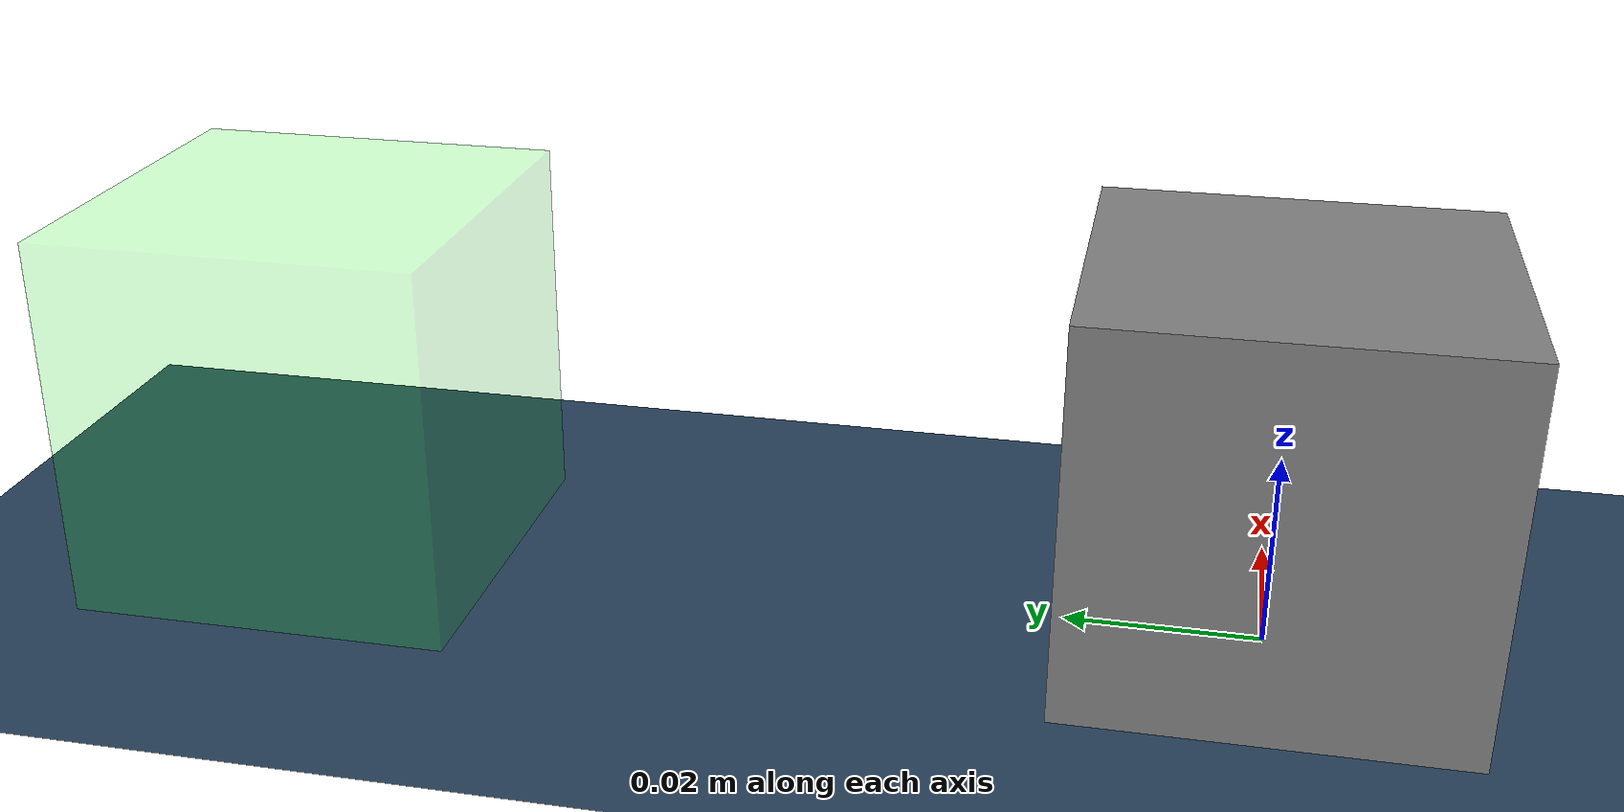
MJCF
<mujoco model="particle_scene">
  <!-- Model that includes like lighting and a ground. -->
  <include file="pushbox.xml"/>

  <statistic center="0 0 0" extent="0.9"/>

  <visual>
    <headlight diffuse="0.6 0.6 0.6" ambient="0.3 0.3 0.3" specular="0 0 0"/>
    <rgba haze="0.15 0.25 0.35 1"/>
    <global azimuth="120" elevation="-20" offwidth="640" offheight="480"/>
  </visual>

  <asset>
    <texture type="skybox" builtin="gradient" rgb1="0.3 0.5 0.7" rgb2="0 0 0" width="512" height="3072"/>
    <texture type="2d" name="groundplane" builtin="checker" mark="edge" rgb1="0.2 0.3 0.4" rgb2="0.1 0.2 0.3"
      markrgb="0.8 0.8 0.8" width="300" height="300"/>
    <material name="groundplane" texture="groundplane" texuniform="true" texrepeat="5 5" reflectance="0.2"/>
  </asset>

  <worldbody>
    <light pos="0 0 1"/>
    <geom name="floor" size="0 0 .125" type="plane" material="groundplane"/>
  </worldbody>

</mujoco>

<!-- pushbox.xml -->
<mujoco model="pushbox">
  <option timestep="0.001" iterations="1" ls_iterations="4" />

  <default>
    <default class="goal">
      <geom conaffinity="0" contype="0" rgba="0 1 0 0.2"/>
    </default>
    <default class="translation">
      <position kp="100" kv="20" ctrlrange="-0.25 0.25"/>
    </default>
    <geom friction="1"/>
  </default>

  <worldbody>
    <!-- Reference site for Cartesian control -->
    <site name="reference" pos="0.0 0.0 0.02" size="0.01" rgba="1 0 0 0.0"/>

    <body name="goal" mocap="true" pos="0.0 0.1 0.02">
      <geom class="goal" name="goal_cube" type="box" size="0.02 0.02 0.02"/>
    </body>

    <body name="block" pos="0.0 0.0 0.02">
      <joint name="T_x" type="slide" pos="0 0 0" axis="1 0 0" />
      <joint name="T_y" type="slide" pos="0 0 0" axis="0 1 0" />
      <joint name="T_z" type="slide" pos="0 0 0" axis="0 0 1" />
      <joint name="R_z" axis="0 0 1" />
      <geom name="block_cube" type="box" size="0.02 0.02 0.02" />
      <inertial pos="0 0 0" mass="1" diaginertia="0.001 0.001 0.001"/>
    </body>

    <body name="pusher" pos="0 0.0 0.02">
      <joint name="root_x" type="slide" pos="0 0 0" axis="1 0 0" />
      <joint name="root_y" type="slide" pos="0 0 0" axis="0 1 0" />
      <geom name="pusher" type="sphere" size="0.02" rgba="1 0 0 1" />
      <site name="pusher" pos="0 0 0" size="0.02" rgba="1 0 0 0" />
      <inertial pos="0 0 0" mass="0.1" diaginertia="0.0001 0.0001 0.0001"/>
    </body>
  </worldbody>

  <actuator>
    <!-- Replace velocity actuators with position actuators -->
    <position name="x" site="pusher" refsite="reference" gear="1 0 0 0 0 0" class="translation"/>
    <position name="y" site="pusher" refsite="reference" gear="0 1 0 0 0 0" class="translation"/>
  </actuator>

  <sensor>
    <framepos name="position" objtype="body" objname="block" reftype="body" refname="goal"/>
    <framequat name="orientation" objtype="body" objname="block" reftype="body" refname="goal"/>
  </sensor>
</mujoco>
